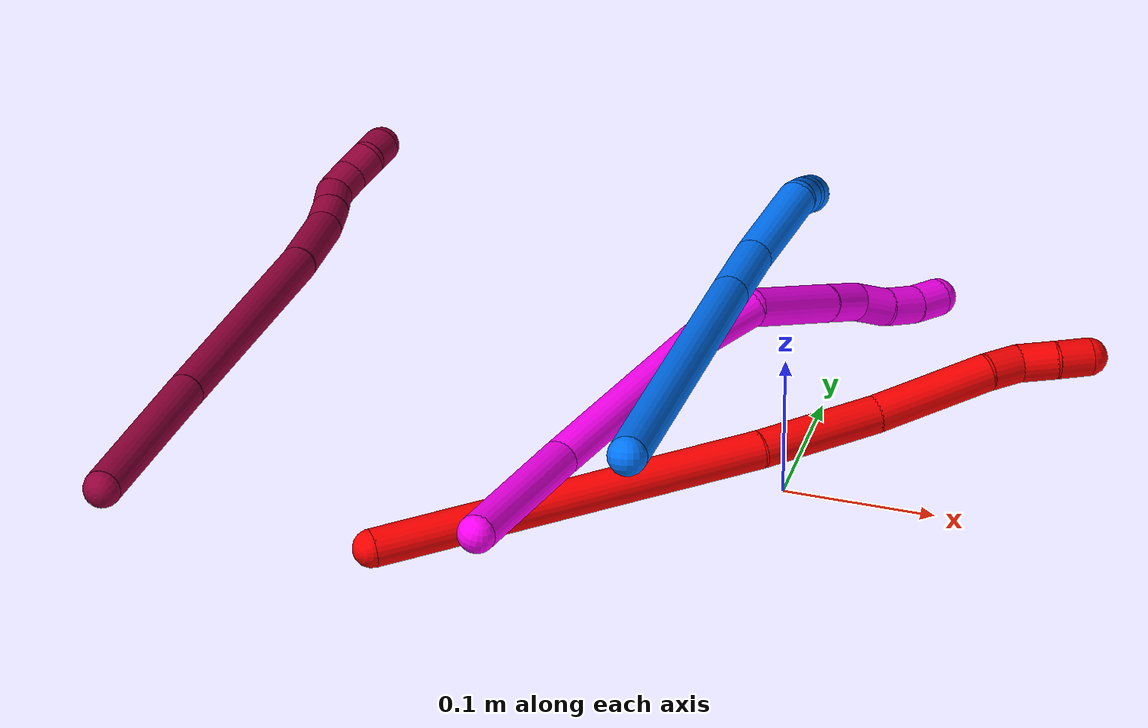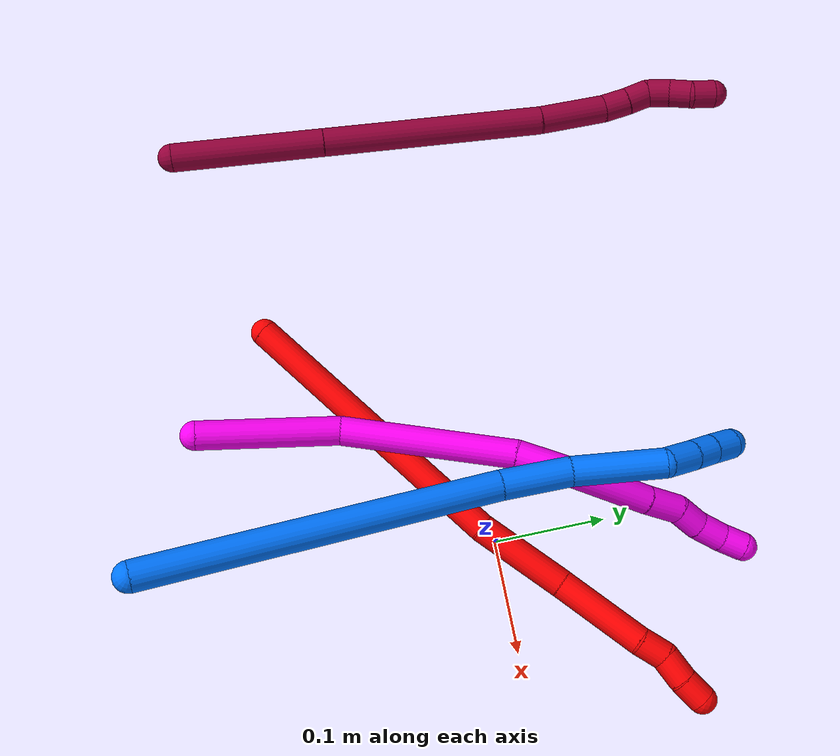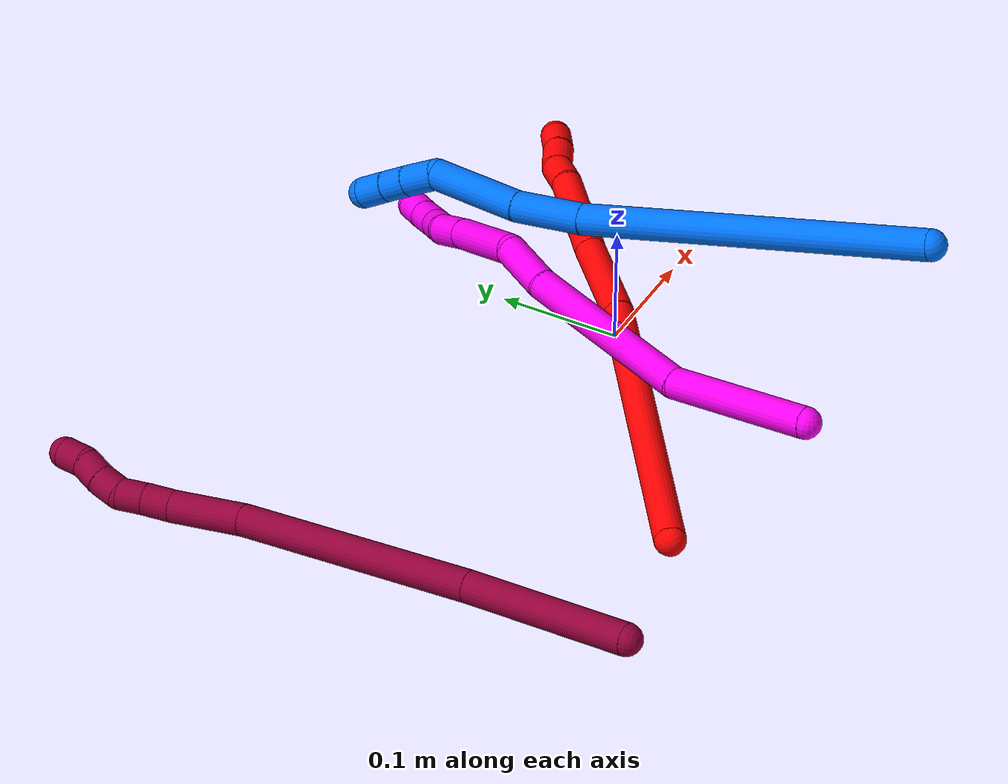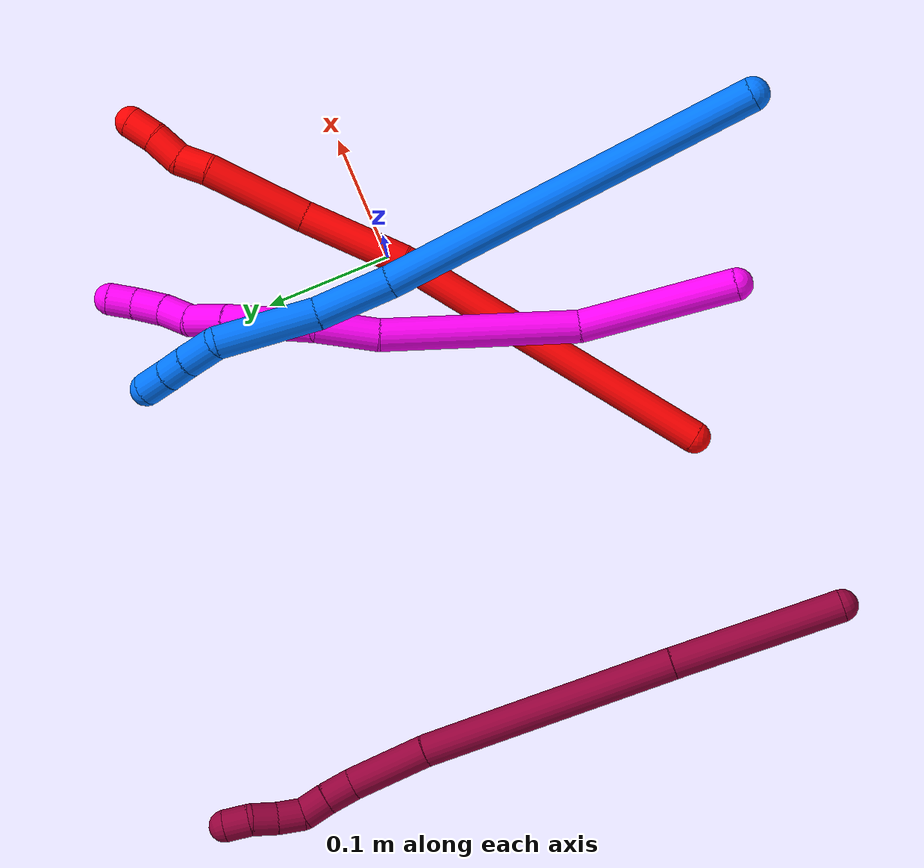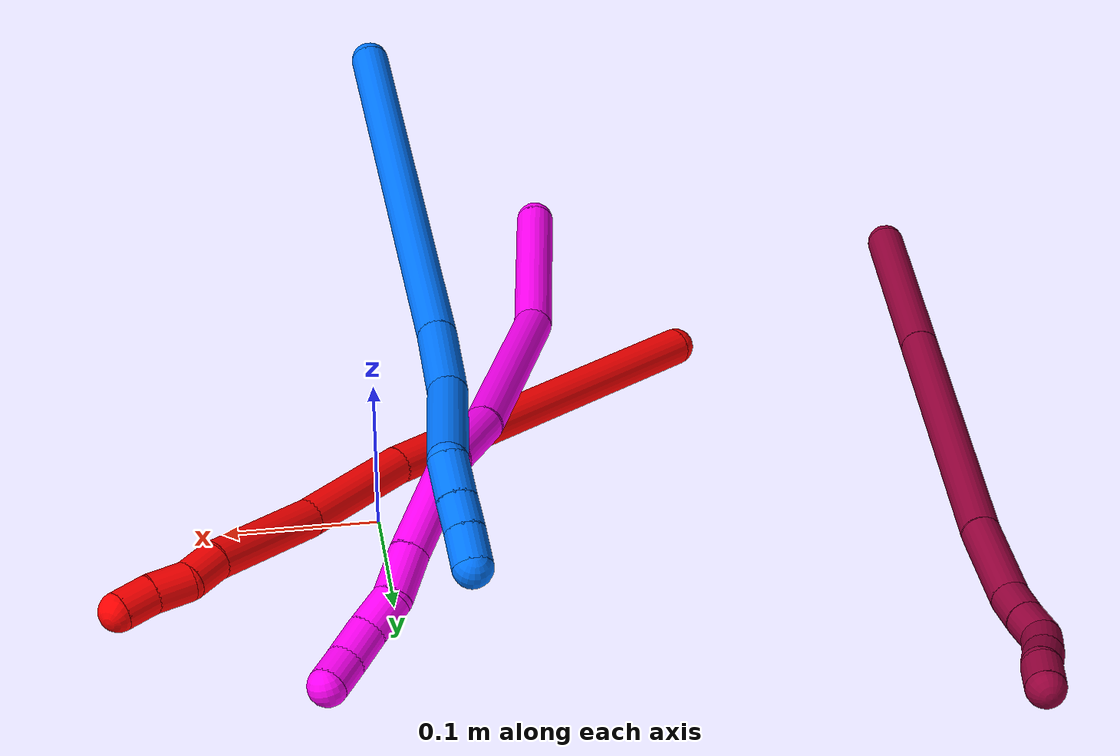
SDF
<sdf version="1.7">
 <world name="default">
  <model name="2">
   <static>0</static>
   <link name="2">
    <collision name="collision-cylinder-e_1_1_4">
     <pose>0.05207 0.022158 -0.118259 -2.95637 0.40844 -2.29847</pose>
     <geometry><cylinder><radius>0.0125</radius><length>0.262201</length></cylinder></geometry>
     <surface>
      <friction><ode><mu>1.16</mu><mu2>1.16</mu2><slip1>0</slip1><slip2>0</slip2></ode></friction>
      <contact><ode><kp>1e+06</kp><kd>1</kd><max_vel>0</max_vel><min_depth>0.001</min_depth></ode></contact>
     </surface>
    </collision>
    <visual name="visual-cylinder-e_1_1_4">
     <pose>0.05207 0.022158 -0.118259 -2.95637 0.40844 -2.29847</pose>
     <geometry><cylinder><radius>0.0125</radius><length>0.262201</length></cylinder></geometry>
     <material><ambient>1 0 0 1</ambient></material>
    </visual>
    <collision name="collision-cylinder-e_2_4_5">
     <pose>0.115905 0.050262 -0.276185 -2.99281 0.285304 -2.18427</pose>
     <geometry><cylinder><radius>0.0125</radius><length>0.083602</length></cylinder></geometry>
     <surface>
      <friction><ode><mu>1.16</mu><mu2>1.16</mu2><slip1>0</slip1><slip2>0</slip2></ode></friction>
      <contact><ode><kp>1e+06</kp><kd>1</kd><max_vel>0</max_vel><min_depth>0.001</min_depth></ode></contact>
     </surface>
    </collision>
    <visual name="visual-cylinder-e_2_4_5">
     <pose>0.115905 0.050262 -0.276185 -2.99281 0.285304 -2.18427</pose>
     <geometry><cylinder><radius>0.0125</radius><length>0.083602</length></cylinder></geometry>
     <material><ambient>1 0 0 1</ambient></material>
    </visual>
    <collision name="collision-cylinder-e_3_5_6">
     <pose>0.140155 0.065776 -0.35347 -2.89252 0.311186 -1.79448</pose>
     <geometry><cylinder><radius>0.0125</radius><length>0.081547</length></cylinder></geometry>
     <surface>
      <friction><ode><mu>1.16</mu><mu2>1.16</mu2><slip1>0</slip1><slip2>0</slip2></ode></friction>
      <contact><ode><kp>1e+06</kp><kd>1</kd><max_vel>0</max_vel><min_depth>0.001</min_depth></ode></contact>
     </surface>
    </collision>
    <visual name="visual-cylinder-e_3_5_6">
     <pose>0.140155 0.065776 -0.35347 -2.89252 0.311186 -1.79448</pose>
     <geometry><cylinder><radius>0.0125</radius><length>0.081547</length></cylinder></geometry>
     <material><ambient>1 0 0 1</ambient></material>
    </visual>
    <collision name="collision-cylinder-e_4_6_7">
     <pose>0.155216 0.076288 -0.403012 -3.06265 0.212187 -2.43138</pose>
     <geometry><cylinder><radius>0.0125</radius><length>0.024472</length></cylinder></geometry>
     <surface>
      <friction><ode><mu>1.16</mu><mu2>1.16</mu2><slip1>0</slip1><slip2>0</slip2></ode></friction>
      <contact><ode><kp>1e+06</kp><kd>1</kd><max_vel>0</max_vel><min_depth>0.001</min_depth></ode></contact>
     </surface>
    </collision>
    <visual name="visual-cylinder-e_4_6_7">
     <pose>0.155216 0.076288 -0.403012 -3.06265 0.212187 -2.43138</pose>
     <geometry><cylinder><radius>0.0125</radius><length>0.024472</length></cylinder></geometry>
     <material><ambient>1 0 0 1</ambient></material>
    </visual>
    <collision name="collision-cylinder-e_5_7_8">
     <pose>0.164825 0.078379 -0.425288 -3.03118 0.593919 -2.78424</pose>
     <geometry><cylinder><radius>0.0125</radius><length>0.025134</length></cylinder></geometry>
     <surface>
      <friction><ode><mu>1.16</mu><mu2>1.16</mu2><slip1>0</slip1><slip2>0</slip2></ode></friction>
      <contact><ode><kp>1e+06</kp><kd>1</kd><max_vel>0</max_vel><min_depth>0.001</min_depth></ode></contact>
     </surface>
    </collision>
    <visual name="visual-cylinder-e_5_7_8">
     <pose>0.164825 0.078379 -0.425288 -3.03118 0.593919 -2.78424</pose>
     <geometry><cylinder><radius>0.0125</radius><length>0.025134</length></cylinder></geometry>
     <material><ambient>1 0 0 1</ambient></material>
    </visual>
    <collision name="collision-cylinder-e_6_8_2">
     <pose>0.176821 0.079839 -0.446033 -3.11155 0.445329 -3.00908</pose>
     <geometry><cylinder><radius>0.0125</radius><length>0.023045</length></cylinder></geometry>
     <surface>
      <friction><ode><mu>1.16</mu><mu2>1.16</mu2><slip1>0</slip1><slip2>0</slip2></ode></friction>
      <contact><ode><kp>1e+06</kp><kd>1</kd><max_vel>0</max_vel><min_depth>0.001</min_depth></ode></contact>
     </surface>
    </collision>
    <visual name="visual-cylinder-e_6_8_2">
     <pose>0.176821 0.079839 -0.446033 -3.11155 0.445329 -3.00908</pose>
     <geometry><cylinder><radius>0.0125</radius><length>0.023045</length></cylinder></geometry>
     <material><ambient>1 0 0 1</ambient></material>
    </visual>
    <collision name="collision-sphere-2">
     <pose>0.181784 0.080151 -0.456427 0 -0 0</pose>
     <geometry><sphere><radius>0.0125</radius></sphere></geometry>
     <surface>
      <friction><ode><mu>1.16</mu><mu2>1.16</mu2><slip1>0</slip1><slip2>0</slip2></ode></friction>
      <contact><ode><kp>1e+06</kp><kd>1</kd><max_vel>0</max_vel><min_depth>0.001</min_depth></ode></contact>
     </surface>
    </collision>
    <visual name="visual-sphere-2">
     <pose>0.181784 0.080151 -0.456427 0 -0 0</pose>
     <geometry><sphere><radius>0.0125</radius></sphere></geometry>
     <material><ambient>1 0 0 1</ambient></material>
    </visual>
    <collision name="collision-sphere-4">
     <pose>0.104141 0.044316 -0.236517 0 -0 0</pose>
     <geometry><sphere><radius>0.0125</radius></sphere></geometry>
     <surface>
      <friction><ode><mu>1.16</mu><mu2>1.16</mu2><slip1>0</slip1><slip2>0</slip2></ode></friction>
      <contact><ode><kp>1e+06</kp><kd>1</kd><max_vel>0</max_vel><min_depth>0.001</min_depth></ode></contact>
     </surface>
    </collision>
    <visual name="visual-sphere-4">
     <pose>0.104141 0.044316 -0.236517 0 -0 0</pose>
     <geometry><sphere><radius>0.0125</radius></sphere></geometry>
     <material><ambient>1 0 0 1</ambient></material>
    </visual>
    <collision name="collision-sphere-1">
     <geometry><sphere><radius>0.0125</radius></sphere></geometry>
     <surface>
      <friction><ode><mu>1.16</mu><mu2>1.16</mu2><slip1>0</slip1><slip2>0</slip2></ode></friction>
      <contact><ode><kp>1e+06</kp><kd>1</kd><max_vel>0</max_vel><min_depth>0.001</min_depth></ode></contact>
     </surface>
    </collision>
    <visual name="visual-sphere-1">
     <geometry><sphere><radius>0.0125</radius></sphere></geometry>
     <material><ambient>1 0 0 1</ambient></material>
    </visual>
    <collision name="collision-sphere-8">
     <pose>0.171858 0.079526 -0.435639 0 -0 0</pose>
     <geometry><sphere><radius>0.0125</radius></sphere></geometry>
     <surface>
      <friction><ode><mu>1.16</mu><mu2>1.16</mu2><slip1>0</slip1><slip2>0</slip2></ode></friction>
      <contact><ode><kp>1e+06</kp><kd>1</kd><max_vel>0</max_vel><min_depth>0.001</min_depth></ode></contact>
     </surface>
    </collision>
    <visual name="visual-sphere-8">
     <pose>0.171858 0.079526 -0.435639 0 -0 0</pose>
     <geometry><sphere><radius>0.0125</radius></sphere></geometry>
     <material><ambient>1 0 0 1</ambient></material>
    </visual>
    <collision name="collision-sphere-5">
     <pose>0.12767 0.056208 -0.315853 0 -0 0</pose>
     <geometry><sphere><radius>0.0125</radius></sphere></geometry>
     <surface>
      <friction><ode><mu>1.16</mu><mu2>1.16</mu2><slip1>0</slip1><slip2>0</slip2></ode></friction>
      <contact><ode><kp>1e+06</kp><kd>1</kd><max_vel>0</max_vel><min_depth>0.001</min_depth></ode></contact>
     </surface>
    </collision>
    <visual name="visual-sphere-5">
     <pose>0.12767 0.056208 -0.315853 0 -0 0</pose>
     <geometry><sphere><radius>0.0125</radius></sphere></geometry>
     <material><ambient>1 0 0 1</ambient></material>
    </visual>
    <collision name="collision-sphere-6">
     <pose>0.152639 0.075344 -0.391087 0 -0 0</pose>
     <geometry><sphere><radius>0.0125</radius></sphere></geometry>
     <surface>
      <friction><ode><mu>1.16</mu><mu2>1.16</mu2><slip1>0</slip1><slip2>0</slip2></ode></friction>
      <contact><ode><kp>1e+06</kp><kd>1</kd><max_vel>0</max_vel><min_depth>0.001</min_depth></ode></contact>
     </surface>
    </collision>
    <visual name="visual-sphere-6">
     <pose>0.152639 0.075344 -0.391087 0 -0 0</pose>
     <geometry><sphere><radius>0.0125</radius></sphere></geometry>
     <material><ambient>1 0 0 1</ambient></material>
    </visual>
    <collision name="collision-sphere-7">
     <pose>0.157793 0.077231 -0.414936 0 -0 0</pose>
     <geometry><sphere><radius>0.0125</radius></sphere></geometry>
     <surface>
      <friction><ode><mu>1.16</mu><mu2>1.16</mu2><slip1>0</slip1><slip2>0</slip2></ode></friction>
      <contact><ode><kp>1e+06</kp><kd>1</kd><max_vel>0</max_vel><min_depth>0.001</min_depth></ode></contact>
     </surface>
    </collision>
    <visual name="visual-sphere-7">
     <pose>0.157793 0.077231 -0.414936 0 -0 0</pose>
     <geometry><sphere><radius>0.0125</radius></sphere></geometry>
     <material><ambient>1 0 0 1</ambient></material>
    </visual>
    <inertial>
     <pose>0.093576 0.042105 -0.227503 0 -0 0</pose>
     <mass>0.5</mass>
     <inertia>
      <ixx>-0.002077</ixx>
      <ixy>0</ixy>
      <ixz>0</ixz>
      <iyy>4e-06</iyy>
      <iyz>0</iyz>
      <izz>-0.000943</izz>
     </inertia>
    </inertial>
   </link>
   <pose>-0.22481 -0.16382 0.023287 1.41711 -0.050934 -0.53238</pose>
  </model>
  <model name="8">
   <static>0</static>
   <link name="8">
    <collision name="collision-cylinder-e_1_1_4">
     <pose>0.001609 0.007784 -0.066344 -3.0248 0.024082 -0.406238</pose>
     <geometry><cylinder><radius>0.0125</radius><length>0.133638</length></cylinder></geometry>
     <surface>
      <friction><ode><mu>1.16</mu><mu2>1.16</mu2><slip1>0</slip1><slip2>0</slip2></ode></friction>
      <contact><ode><kp>1e+06</kp><kd>1</kd><max_vel>0</max_vel><min_depth>0.001</min_depth></ode></contact>
     </surface>
    </collision>
    <visual name="visual-cylinder-e_1_1_4">
     <pose>0.001609 0.007784 -0.066344 -3.0248 0.024082 -0.406238</pose>
     <geometry><cylinder><radius>0.0125</radius><length>0.133638</length></cylinder></geometry>
     <material><ambient>0.584314 0 0.227451 1</ambient></material>
    </visual>
    <collision name="collision-cylinder-e_2_4_5">
     <pose>0.00877 0.028663 -0.231424 -3.00974 0.055685 -0.798379</pose>
     <geometry><cylinder><radius>0.0125</radius><length>0.199509</length></cylinder></geometry>
     <surface>
      <friction><ode><mu>1.16</mu><mu2>1.16</mu2><slip1>0</slip1><slip2>0</slip2></ode></friction>
      <contact><ode><kp>1e+06</kp><kd>1</kd><max_vel>0</max_vel><min_depth>0.001</min_depth></ode></contact>
     </surface>
    </collision>
    <visual name="visual-cylinder-e_2_4_5">
     <pose>0.00877 0.028663 -0.231424 -3.00974 0.055685 -0.798379</pose>
     <geometry><cylinder><radius>0.0125</radius><length>0.199509</length></cylinder></geometry>
     <material><ambient>0.584314 0 0.227451 1</ambient></material>
    </visual>
    <collision name="collision-cylinder-e_3_5_6">
     <pose>0.018689 0.044548 -0.360663 -3.05035 0.141613 -1.99776</pose>
     <geometry><cylinder><radius>0.0125</radius><length>0.061881</length></cylinder></geometry>
     <surface>
      <friction><ode><mu>1.16</mu><mu2>1.16</mu2><slip1>0</slip1><slip2>0</slip2></ode></friction>
      <contact><ode><kp>1e+06</kp><kd>1</kd><max_vel>0</max_vel><min_depth>0.001</min_depth></ode></contact>
     </surface>
    </collision>
    <visual name="visual-cylinder-e_3_5_6">
     <pose>0.018689 0.044548 -0.360663 -3.05035 0.141613 -1.99776</pose>
     <geometry><cylinder><radius>0.0125</radius><length>0.061881</length></cylinder></geometry>
     <material><ambient>0.584314 0 0.227451 1</ambient></material>
    </visual>
    <collision name="collision-cylinder-e_4_6_7">
     <pose>0.024136 0.04656 -0.402703 3.0742 0.093147 1.88921</pose>
     <geometry><cylinder><radius>0.0125</radius><length>0.023227</length></cylinder></geometry>
     <surface>
      <friction><ode><mu>1.16</mu><mu2>1.16</mu2><slip1>0</slip1><slip2>0</slip2></ode></friction>
      <contact><ode><kp>1e+06</kp><kd>1</kd><max_vel>0</max_vel><min_depth>0.001</min_depth></ode></contact>
     </surface>
    </collision>
    <visual name="visual-cylinder-e_4_6_7">
     <pose>0.024136 0.04656 -0.402703 3.0742 0.093147 1.88921</pose>
     <geometry><cylinder><radius>0.0125</radius><length>0.023227</length></cylinder></geometry>
     <material><ambient>0.584314 0 0.227451 1</ambient></material>
    </visual>
    <collision name="collision-cylinder-e_5_7_8">
     <pose>0.02672 0.044532 -0.424545 3.02091 0.143861 1.7461</pose>
     <geometry><cylinder><radius>0.0125</radius><length>0.020977</length></cylinder></geometry>
     <surface>
      <friction><ode><mu>1.16</mu><mu2>1.16</mu2><slip1>0</slip1><slip2>0</slip2></ode></friction>
      <contact><ode><kp>1e+06</kp><kd>1</kd><max_vel>0</max_vel><min_depth>0.001</min_depth></ode></contact>
     </surface>
    </collision>
    <visual name="visual-cylinder-e_5_7_8">
     <pose>0.02672 0.044532 -0.424545 3.02091 0.143861 1.7461</pose>
     <geometry><cylinder><radius>0.0125</radius><length>0.020977</length></cylinder></geometry>
     <material><ambient>0.584314 0 0.227451 1</ambient></material>
    </visual>
    <collision name="collision-cylinder-e_6_8_9">
     <pose>0.025651 0.044118 -0.444779 -3.05764 -0.252683 2.50288</pose>
     <geometry><cylinder><radius>0.0125</radius><length>0.020584</length></cylinder></geometry>
     <surface>
      <friction><ode><mu>1.16</mu><mu2>1.16</mu2><slip1>0</slip1><slip2>0</slip2></ode></friction>
      <contact><ode><kp>1e+06</kp><kd>1</kd><max_vel>0</max_vel><min_depth>0.001</min_depth></ode></contact>
     </surface>
    </collision>
    <visual name="visual-cylinder-e_6_8_9">
     <pose>0.025651 0.044118 -0.444779 -3.05764 -0.252683 2.50288</pose>
     <geometry><cylinder><radius>0.0125</radius><length>0.020584</length></cylinder></geometry>
     <material><ambient>0.584314 0 0.227451 1</ambient></material>
    </visual>
    <collision name="collision-cylinder-e_7_9_10">
     <pose>0.019064 0.045805 -0.463858 -3.04873 -0.41184 2.70381</pose>
     <geometry><cylinder><radius>0.0125</radius><length>0.020053</length></cylinder></geometry>
     <surface>
      <friction><ode><mu>1.16</mu><mu2>1.16</mu2><slip1>0</slip1><slip2>0</slip2></ode></friction>
      <contact><ode><kp>1e+06</kp><kd>1</kd><max_vel>0</max_vel><min_depth>0.001</min_depth></ode></contact>
     </surface>
    </collision>
    <visual name="visual-cylinder-e_7_9_10">
     <pose>0.019064 0.045805 -0.463858 -3.04873 -0.41184 2.70381</pose>
     <geometry><cylinder><radius>0.0125</radius><length>0.020053</length></cylinder></geometry>
     <material><ambient>0.584314 0 0.227451 1</ambient></material>
    </visual>
    <collision name="collision-cylinder-e_8_10_2">
     <pose>0.014323 0.048223 -0.482923 -2.98503 -0.072278 0.863795</pose>
     <geometry><cylinder><radius>0.0125</radius><length>0.020131</length></cylinder></geometry>
     <surface>
      <friction><ode><mu>1.16</mu><mu2>1.16</mu2><slip1>0</slip1><slip2>0</slip2></ode></friction>
      <contact><ode><kp>1e+06</kp><kd>1</kd><max_vel>0</max_vel><min_depth>0.001</min_depth></ode></contact>
     </surface>
    </collision>
    <visual name="visual-cylinder-e_8_10_2">
     <pose>0.014323 0.048223 -0.482923 -2.98503 -0.072278 0.863795</pose>
     <geometry><cylinder><radius>0.0125</radius><length>0.020131</length></cylinder></geometry>
     <material><ambient>0.584314 0 0.227451 1</ambient></material>
    </visual>
    <collision name="collision-sphere-2">
     <pose>0.013597 0.049788 -0.49284 0 -0 0</pose>
     <geometry><sphere><radius>0.0125</radius></sphere></geometry>
     <surface>
      <friction><ode><mu>1.16</mu><mu2>1.16</mu2><slip1>0</slip1><slip2>0</slip2></ode></friction>
      <contact><ode><kp>1e+06</kp><kd>1</kd><max_vel>0</max_vel><min_depth>0.001</min_depth></ode></contact>
     </surface>
    </collision>
    <visual name="visual-sphere-2">
     <pose>0.013597 0.049788 -0.49284 0 -0 0</pose>
     <geometry><sphere><radius>0.0125</radius></sphere></geometry>
     <material><ambient>0.584314 0 0.227451 1</ambient></material>
    </visual>
    <collision name="collision-sphere-10">
     <pose>0.01505 0.046657 -0.473007 0 -0 0</pose>
     <geometry><sphere><radius>0.0125</radius></sphere></geometry>
     <surface>
      <friction><ode><mu>1.16</mu><mu2>1.16</mu2><slip1>0</slip1><slip2>0</slip2></ode></friction>
      <contact><ode><kp>1e+06</kp><kd>1</kd><max_vel>0</max_vel><min_depth>0.001</min_depth></ode></contact>
     </surface>
    </collision>
    <visual name="visual-sphere-10">
     <pose>0.01505 0.046657 -0.473007 0 -0 0</pose>
     <geometry><sphere><radius>0.0125</radius></sphere></geometry>
     <material><ambient>0.584314 0 0.227451 1</ambient></material>
    </visual>
    <collision name="collision-sphere-9">
     <pose>0.023078 0.044953 -0.454709 0 -0 0</pose>
     <geometry><sphere><radius>0.0125</radius></sphere></geometry>
     <surface>
      <friction><ode><mu>1.16</mu><mu2>1.16</mu2><slip1>0</slip1><slip2>0</slip2></ode></friction>
      <contact><ode><kp>1e+06</kp><kd>1</kd><max_vel>0</max_vel><min_depth>0.001</min_depth></ode></contact>
     </surface>
    </collision>
    <visual name="visual-sphere-9">
     <pose>0.023078 0.044953 -0.454709 0 -0 0</pose>
     <geometry><sphere><radius>0.0125</radius></sphere></geometry>
     <material><ambient>0.584314 0 0.227451 1</ambient></material>
    </visual>
    <collision name="collision-sphere-4">
     <pose>0.003218 0.015569 -0.132689 0 -0 0</pose>
     <geometry><sphere><radius>0.0125</radius></sphere></geometry>
     <surface>
      <friction><ode><mu>1.16</mu><mu2>1.16</mu2><slip1>0</slip1><slip2>0</slip2></ode></friction>
      <contact><ode><kp>1e+06</kp><kd>1</kd><max_vel>0</max_vel><min_depth>0.001</min_depth></ode></contact>
     </surface>
    </collision>
    <visual name="visual-sphere-4">
     <pose>0.003218 0.015569 -0.132689 0 -0 0</pose>
     <geometry><sphere><radius>0.0125</radius></sphere></geometry>
     <material><ambient>0.584314 0 0.227451 1</ambient></material>
    </visual>
    <collision name="collision-sphere-1">
     <geometry><sphere><radius>0.0125</radius></sphere></geometry>
     <surface>
      <friction><ode><mu>1.16</mu><mu2>1.16</mu2><slip1>0</slip1><slip2>0</slip2></ode></friction>
      <contact><ode><kp>1e+06</kp><kd>1</kd><max_vel>0</max_vel><min_depth>0.001</min_depth></ode></contact>
     </surface>
    </collision>
    <visual name="visual-sphere-1">
     <geometry><sphere><radius>0.0125</radius></sphere></geometry>
     <material><ambient>0.584314 0 0.227451 1</ambient></material>
    </visual>
    <collision name="collision-sphere-8">
     <pose>0.028224 0.043282 -0.43485 0 -0 0</pose>
     <geometry><sphere><radius>0.0125</radius></sphere></geometry>
     <surface>
      <friction><ode><mu>1.16</mu><mu2>1.16</mu2><slip1>0</slip1><slip2>0</slip2></ode></friction>
      <contact><ode><kp>1e+06</kp><kd>1</kd><max_vel>0</max_vel><min_depth>0.001</min_depth></ode></contact>
     </surface>
    </collision>
    <visual name="visual-sphere-8">
     <pose>0.028224 0.043282 -0.43485 0 -0 0</pose>
     <geometry><sphere><radius>0.0125</radius></sphere></geometry>
     <material><ambient>0.584314 0 0.227451 1</ambient></material>
    </visual>
    <collision name="collision-sphere-5">
     <pose>0.014322 0.041757 -0.33016 0 -0 0</pose>
     <geometry><sphere><radius>0.0125</radius></sphere></geometry>
     <surface>
      <friction><ode><mu>1.16</mu><mu2>1.16</mu2><slip1>0</slip1><slip2>0</slip2></ode></friction>
      <contact><ode><kp>1e+06</kp><kd>1</kd><max_vel>0</max_vel><min_depth>0.001</min_depth></ode></contact>
     </surface>
    </collision>
    <visual name="visual-sphere-5">
     <pose>0.014322 0.041757 -0.33016 0 -0 0</pose>
     <geometry><sphere><radius>0.0125</radius></sphere></geometry>
     <material><ambient>0.584314 0 0.227451 1</ambient></material>
    </visual>
    <collision name="collision-sphere-6">
     <pose>0.023056 0.047339 -0.391166 0 -0 0</pose>
     <geometry><sphere><radius>0.0125</radius></sphere></geometry>
     <surface>
      <friction><ode><mu>1.16</mu><mu2>1.16</mu2><slip1>0</slip1><slip2>0</slip2></ode></friction>
      <contact><ode><kp>1e+06</kp><kd>1</kd><max_vel>0</max_vel><min_depth>0.001</min_depth></ode></contact>
     </surface>
    </collision>
    <visual name="visual-sphere-6">
     <pose>0.023056 0.047339 -0.391166 0 -0 0</pose>
     <geometry><sphere><radius>0.0125</radius></sphere></geometry>
     <material><ambient>0.584314 0 0.227451 1</ambient></material>
    </visual>
    <collision name="collision-sphere-7">
     <pose>0.025216 0.045781 -0.41424 0 -0 0</pose>
     <geometry><sphere><radius>0.0125</radius></sphere></geometry>
     <surface>
      <friction><ode><mu>1.16</mu><mu2>1.16</mu2><slip1>0</slip1><slip2>0</slip2></ode></friction>
      <contact><ode><kp>1e+06</kp><kd>1</kd><max_vel>0</max_vel><min_depth>0.001</min_depth></ode></contact>
     </surface>
    </collision>
    <visual name="visual-sphere-7">
     <pose>0.025216 0.045781 -0.41424 0 -0 0</pose>
     <geometry><sphere><radius>0.0125</radius></sphere></geometry>
     <material><ambient>0.584314 0 0.227451 1</ambient></material>
    </visual>
    <inertial>
     <pose>0.010882 0.028657 -0.247587 0 -0 0</pose>
     <mass>0.5</mass>
     <inertia>
      <ixx>7e-05</ixx>
      <ixy>0</ixy>
      <ixz>0</ixz>
      <iyy>-0.001203</iyy>
      <iyz>0</iyz>
      <izz>-0.000197</izz>
     </inertia>
    </inertial>
   </link>
   <pose>-0.385847 -0.210301 0.069515 -1.5784 0.775053 3.13515</pose>
  </model>
  <model name="10">
   <static>0</static>
   <link name="10">
    <collision name="collision-cylinder-e_1_1_4">
     <pose>0.028588 0.052034 0.012309 -1.3385 0.490987 -0.391313</pose>
     <geometry><cylinder><radius>0.0125</radius><length>0.121266</length></cylinder></geometry>
     <surface>
      <friction><ode><mu>1.16</mu><mu2>1.16</mu2><slip1>0</slip1><slip2>0</slip2></ode></friction>
      <contact><ode><kp>1e+06</kp><kd>1</kd><max_vel>0</max_vel><min_depth>0.001</min_depth></ode></contact>
     </surface>
    </collision>
    <visual name="visual-cylinder-e_1_1_4">
     <pose>0.028588 0.052034 0.012309 -1.3385 0.490987 -0.391313</pose>
     <geometry><cylinder><radius>0.0125</radius><length>0.121266</length></cylinder></geometry>
     <material><ambient>1 0 0.964706 1</ambient></material>
    </visual>
    <collision name="collision-cylinder-e_2_4_5">
     <pose>0.084109 0.174244 0.020451 -1.63011 0.365871 -0.387703</pose>
     <geometry><cylinder><radius>0.0125</radius><length>0.150565</length></cylinder></geometry>
     <surface>
      <friction><ode><mu>1.16</mu><mu2>1.16</mu2><slip1>0</slip1><slip2>0</slip2></ode></friction>
      <contact><ode><kp>1e+06</kp><kd>1</kd><max_vel>0</max_vel><min_depth>0.001</min_depth></ode></contact>
     </surface>
    </collision>
    <visual name="visual-cylinder-e_2_4_5">
     <pose>0.084109 0.174244 0.020451 -1.63011 0.365871 -0.387703</pose>
     <geometry><cylinder><radius>0.0125</radius><length>0.150565</length></cylinder></geometry>
     <material><ambient>1 0 0.964706 1</ambient></material>
    </visual>
    <collision name="collision-cylinder-e_3_5_6">
     <pose>0.115414 0.267782 0.013937 -1.67091 0.184075 -0.203363</pose>
     <geometry><cylinder><radius>0.0125</radius><length>0.047766</length></cylinder></geometry>
     <surface>
      <friction><ode><mu>1.16</mu><mu2>1.16</mu2><slip1>0</slip1><slip2>0</slip2></ode></friction>
      <contact><ode><kp>1e+06</kp><kd>1</kd><max_vel>0</max_vel><min_depth>0.001</min_depth></ode></contact>
     </surface>
    </collision>
    <visual name="visual-cylinder-e_3_5_6">
     <pose>0.115414 0.267782 0.013937 -1.67091 0.184075 -0.203363</pose>
     <geometry><cylinder><radius>0.0125</radius><length>0.047766</length></cylinder></geometry>
     <material><ambient>1 0 0.964706 1</ambient></material>
    </visual>
    <collision name="collision-cylinder-e_4_6_7">
     <pose>0.123125 0.32642 0.024231 -1.22672 0.088884 -0.062589</pose>
     <geometry><cylinder><radius>0.0125</radius><length>0.075244</length></cylinder></geometry>
     <surface>
      <friction><ode><mu>1.16</mu><mu2>1.16</mu2><slip1>0</slip1><slip2>0</slip2></ode></friction>
      <contact><ode><kp>1e+06</kp><kd>1</kd><max_vel>0</max_vel><min_depth>0.001</min_depth></ode></contact>
     </surface>
    </collision>
    <visual name="visual-cylinder-e_4_6_7">
     <pose>0.123125 0.32642 0.024231 -1.22672 0.088884 -0.062589</pose>
     <geometry><cylinder><radius>0.0125</radius><length>0.075244</length></cylinder></geometry>
     <material><ambient>1 0 0.964706 1</ambient></material>
    </visual>
    <collision name="collision-cylinder-e_5_7_8">
     <pose>0.12866 0.376721 0.043047 -1.18082 0.134331 -0.090097</pose>
     <geometry><cylinder><radius>0.0125</radius><length>0.032782</length></cylinder></geometry>
     <surface>
      <friction><ode><mu>1.16</mu><mu2>1.16</mu2><slip1>0</slip1><slip2>0</slip2></ode></friction>
      <contact><ode><kp>1e+06</kp><kd>1</kd><max_vel>0</max_vel><min_depth>0.001</min_depth></ode></contact>
     </surface>
    </collision>
    <visual name="visual-cylinder-e_5_7_8">
     <pose>0.12866 0.376721 0.043047 -1.18082 0.134331 -0.090097</pose>
     <geometry><cylinder><radius>0.0125</radius><length>0.032782</length></cylinder></geometry>
     <material><ambient>1 0 0.964706 1</ambient></material>
    </visual>
    <collision name="collision-cylinder-e_6_8_9">
     <pose>0.128334 0.403383 0.053289 -1.23462 -0.201687 0.14341</pose>
     <geometry><cylinder><radius>0.0125</radius><length>0.025167</length></cylinder></geometry>
     <surface>
      <friction><ode><mu>1.16</mu><mu2>1.16</mu2><slip1>0</slip1><slip2>0</slip2></ode></friction>
      <contact><ode><kp>1e+06</kp><kd>1</kd><max_vel>0</max_vel><min_depth>0.001</min_depth></ode></contact>
     </surface>
    </collision>
    <visual name="visual-cylinder-e_6_8_9">
     <pose>0.128334 0.403383 0.053289 -1.23462 -0.201687 0.14341</pose>
     <geometry><cylinder><radius>0.0125</radius><length>0.025167</length></cylinder></geometry>
     <material><ambient>1 0 0.964706 1</ambient></material>
    </visual>
    <collision name="collision-cylinder-e_7_9_10">
     <pose>0.125605 0.427448 0.060113 -1.3525 -0.016421 0.013178</pose>
     <geometry><cylinder><radius>0.0125</radius><length>0.025461</length></cylinder></geometry>
     <surface>
      <friction><ode><mu>1.16</mu><mu2>1.16</mu2><slip1>0</slip1><slip2>0</slip2></ode></friction>
      <contact><ode><kp>1e+06</kp><kd>1</kd><max_vel>0</max_vel><min_depth>0.001</min_depth></ode></contact>
     </surface>
    </collision>
    <visual name="visual-cylinder-e_7_9_10">
     <pose>0.125605 0.427448 0.060113 -1.3525 -0.016421 0.013178</pose>
     <geometry><cylinder><radius>0.0125</radius><length>0.025461</length></cylinder></geometry>
     <material><ambient>1 0 0.964706 1</ambient></material>
    </visual>
    <collision name="collision-cylinder-e_8_10_2">
     <pose>0.126275 0.450665 0.063898 -1.47575 0.080973 -0.073628</pose>
     <geometry><cylinder><radius>0.0125</radius><length>0.02175</length></cylinder></geometry>
     <surface>
      <friction><ode><mu>1.16</mu><mu2>1.16</mu2><slip1>0</slip1><slip2>0</slip2></ode></friction>
      <contact><ode><kp>1e+06</kp><kd>1</kd><max_vel>0</max_vel><min_depth>0.001</min_depth></ode></contact>
     </surface>
    </collision>
    <visual name="visual-cylinder-e_8_10_2">
     <pose>0.126275 0.450665 0.063898 -1.47575 0.080973 -0.073628</pose>
     <geometry><cylinder><radius>0.0125</radius><length>0.02175</length></cylinder></geometry>
     <material><ambient>1 0 0.964706 1</ambient></material>
    </visual>
    <collision name="collision-sphere-2">
     <pose>0.127155 0.461456 0.064927 0 -0 0</pose>
     <geometry><sphere><radius>0.0125</radius></sphere></geometry>
     <surface>
      <friction><ode><mu>1.16</mu><mu2>1.16</mu2><slip1>0</slip1><slip2>0</slip2></ode></friction>
      <contact><ode><kp>1e+06</kp><kd>1</kd><max_vel>0</max_vel><min_depth>0.001</min_depth></ode></contact>
     </surface>
    </collision>
    <visual name="visual-sphere-2">
     <pose>0.127155 0.461456 0.064927 0 -0 0</pose>
     <geometry><sphere><radius>0.0125</radius></sphere></geometry>
     <material><ambient>1 0 0.964706 1</ambient></material>
    </visual>
    <collision name="collision-sphere-10">
     <pose>0.125396 0.439875 0.062869 0 -0 0</pose>
     <geometry><sphere><radius>0.0125</radius></sphere></geometry>
     <surface>
      <friction><ode><mu>1.16</mu><mu2>1.16</mu2><slip1>0</slip1><slip2>0</slip2></ode></friction>
      <contact><ode><kp>1e+06</kp><kd>1</kd><max_vel>0</max_vel><min_depth>0.001</min_depth></ode></contact>
     </surface>
    </collision>
    <visual name="visual-sphere-10">
     <pose>0.125396 0.439875 0.062869 0 -0 0</pose>
     <geometry><sphere><radius>0.0125</radius></sphere></geometry>
     <material><ambient>1 0 0.964706 1</ambient></material>
    </visual>
    <collision name="collision-sphere-9">
     <pose>0.125814 0.415021 0.057356 0 -0 0</pose>
     <geometry><sphere><radius>0.0125</radius></sphere></geometry>
     <surface>
      <friction><ode><mu>1.16</mu><mu2>1.16</mu2><slip1>0</slip1><slip2>0</slip2></ode></friction>
      <contact><ode><kp>1e+06</kp><kd>1</kd><max_vel>0</max_vel><min_depth>0.001</min_depth></ode></contact>
     </surface>
    </collision>
    <visual name="visual-sphere-9">
     <pose>0.125814 0.415021 0.057356 0 -0 0</pose>
     <geometry><sphere><radius>0.0125</radius></sphere></geometry>
     <material><ambient>1 0 0.964706 1</ambient></material>
    </visual>
    <collision name="collision-sphere-4">
     <pose>0.057176 0.104068 0.024619 0 -0 0</pose>
     <geometry><sphere><radius>0.0125</radius></sphere></geometry>
     <surface>
      <friction><ode><mu>1.16</mu><mu2>1.16</mu2><slip1>0</slip1><slip2>0</slip2></ode></friction>
      <contact><ode><kp>1e+06</kp><kd>1</kd><max_vel>0</max_vel><min_depth>0.001</min_depth></ode></contact>
     </surface>
    </collision>
    <visual name="visual-sphere-4">
     <pose>0.057176 0.104068 0.024619 0 -0 0</pose>
     <geometry><sphere><radius>0.0125</radius></sphere></geometry>
     <material><ambient>1 0 0.964706 1</ambient></material>
    </visual>
    <collision name="collision-sphere-1">
     <geometry><sphere><radius>0.0125</radius></sphere></geometry>
     <surface>
      <friction><ode><mu>1.16</mu><mu2>1.16</mu2><slip1>0</slip1><slip2>0</slip2></ode></friction>
      <contact><ode><kp>1e+06</kp><kd>1</kd><max_vel>0</max_vel><min_depth>0.001</min_depth></ode></contact>
     </surface>
    </collision>
    <visual name="visual-sphere-1">
     <geometry><sphere><radius>0.0125</radius></sphere></geometry>
     <material><ambient>1 0 0.964706 1</ambient></material>
    </visual>
    <collision name="collision-sphere-8">
     <pose>0.130855 0.391745 0.049222 0 -0 0</pose>
     <geometry><sphere><radius>0.0125</radius></sphere></geometry>
     <surface>
      <friction><ode><mu>1.16</mu><mu2>1.16</mu2><slip1>0</slip1><slip2>0</slip2></ode></friction>
      <contact><ode><kp>1e+06</kp><kd>1</kd><max_vel>0</max_vel><min_depth>0.001</min_depth></ode></contact>
     </surface>
    </collision>
    <visual name="visual-sphere-8">
     <pose>0.130855 0.391745 0.049222 0 -0 0</pose>
     <geometry><sphere><radius>0.0125</radius></sphere></geometry>
     <material><ambient>1 0 0.964706 1</ambient></material>
    </visual>
    <collision name="collision-sphere-5">
     <pose>0.111043 0.24442 0.016283 0 -0 0</pose>
     <geometry><sphere><radius>0.0125</radius></sphere></geometry>
     <surface>
      <friction><ode><mu>1.16</mu><mu2>1.16</mu2><slip1>0</slip1><slip2>0</slip2></ode></friction>
      <contact><ode><kp>1e+06</kp><kd>1</kd><max_vel>0</max_vel><min_depth>0.001</min_depth></ode></contact>
     </surface>
    </collision>
    <visual name="visual-sphere-5">
     <pose>0.111043 0.24442 0.016283 0 -0 0</pose>
     <geometry><sphere><radius>0.0125</radius></sphere></geometry>
     <material><ambient>1 0 0.964706 1</ambient></material>
    </visual>
    <collision name="collision-sphere-6">
     <pose>0.119786 0.291144 0.01159 0 -0 0</pose>
     <geometry><sphere><radius>0.0125</radius></sphere></geometry>
     <surface>
      <friction><ode><mu>1.16</mu><mu2>1.16</mu2><slip1>0</slip1><slip2>0</slip2></ode></friction>
      <contact><ode><kp>1e+06</kp><kd>1</kd><max_vel>0</max_vel><min_depth>0.001</min_depth></ode></contact>
     </surface>
    </collision>
    <visual name="visual-sphere-6">
     <pose>0.119786 0.291144 0.01159 0 -0 0</pose>
     <geometry><sphere><radius>0.0125</radius></sphere></geometry>
     <material><ambient>1 0 0.964706 1</ambient></material>
    </visual>
    <collision name="collision-sphere-7">
     <pose>0.126465 0.361697 0.036872 0 -0 0</pose>
     <geometry><sphere><radius>0.0125</radius></sphere></geometry>
     <surface>
      <friction><ode><mu>1.16</mu><mu2>1.16</mu2><slip1>0</slip1><slip2>0</slip2></ode></friction>
      <contact><ode><kp>1e+06</kp><kd>1</kd><max_vel>0</max_vel><min_depth>0.001</min_depth></ode></contact>
     </surface>
    </collision>
    <visual name="visual-sphere-7">
     <pose>0.126465 0.361697 0.036872 0 -0 0</pose>
     <geometry><sphere><radius>0.0125</radius></sphere></geometry>
     <material><ambient>1 0 0.964706 1</ambient></material>
    </visual>
    <inertial>
     <pose>0.0886 0.226168 0.025467 0 -0 0</pose>
     <mass>0.5</mass>
     <inertia>
      <ixx>0.000286</ixx>
      <ixy>0</ixy>
      <ixz>0</ixz>
      <iyy>-2.4e-05</iyy>
      <iyz>0</iyz>
      <izz>-0.000636</izz>
     </inertia>
    </inertial>
   </link>
   <pose>-0.135113 -0.228729 0.097147 -3.05476 -0.2219 2.43267</pose>
  </model>
  <model name="14">
   <static>0</static>
   <link name="14">
    <collision name="collision-cylinder-e_1_1_4">
     <pose>-0.014067 0.143383 0.023182 -1.41051 -0.096548 0.08221</pose>
     <geometry><cylinder><radius>0.0125</radius><length>0.291849</length></cylinder></geometry>
     <surface>
      <friction><ode><mu>1.16</mu><mu2>1.16</mu2><slip1>0</slip1><slip2>0</slip2></ode></friction>
      <contact><ode><kp>1e+06</kp><kd>1</kd><max_vel>0</max_vel><min_depth>0.001</min_depth></ode></contact>
     </surface>
    </collision>
    <visual name="visual-cylinder-e_1_1_4">
     <pose>-0.014067 0.143383 0.023182 -1.41051 -0.096548 0.08221</pose>
     <geometry><cylinder><radius>0.0125</radius><length>0.291849</length></cylinder></geometry>
     <material><ambient>0 0.462745 1 1</ambient></material>
    </visual>
    <collision name="collision-cylinder-e_2_4_5">
     <pose>-0.029232 0.315119 0.05351 -1.3239 -0.03756 0.029269</pose>
     <geometry><cylinder><radius>0.0125</radius><length>0.058521</length></cylinder></geometry>
     <surface>
      <friction><ode><mu>1.16</mu><mu2>1.16</mu2><slip1>0</slip1><slip2>0</slip2></ode></friction>
      <contact><ode><kp>1e+06</kp><kd>1</kd><max_vel>0</max_vel><min_depth>0.001</min_depth></ode></contact>
     </surface>
    </collision>
    <visual name="visual-cylinder-e_2_4_5">
     <pose>-0.029232 0.315119 0.05351 -1.3239 -0.03756 0.029269</pose>
     <geometry><cylinder><radius>0.0125</radius><length>0.058521</length></cylinder></geometry>
     <material><ambient>0 0.462745 1 1</ambient></material>
    </visual>
    <collision name="collision-cylinder-e_3_5_6">
     <pose>-0.027075 0.37946 0.07421 -1.21058 0.084468 -0.058464</pose>
     <geometry><cylinder><radius>0.0125</radius><length>0.077186</length></cylinder></geometry>
     <surface>
      <friction><ode><mu>1.16</mu><mu2>1.16</mu2><slip1>0</slip1><slip2>0</slip2></ode></friction>
      <contact><ode><kp>1e+06</kp><kd>1</kd><max_vel>0</max_vel><min_depth>0.001</min_depth></ode></contact>
     </surface>
    </collision>
    <visual name="visual-cylinder-e_3_5_6">
     <pose>-0.027075 0.37946 0.07421 -1.21058 0.084468 -0.058464</pose>
     <geometry><cylinder><radius>0.0125</radius><length>0.077186</length></cylinder></geometry>
     <material><ambient>0 0.462745 1 1</ambient></material>
    </visual>
    <collision name="collision-cylinder-e_4_6_7">
     <pose>-0.025961 0.429244 0.086334 -1.6741 -0.153202 0.169829</pose>
     <geometry><cylinder><radius>0.0125</radius><length>0.028071</length></cylinder></geometry>
     <surface>
      <friction><ode><mu>1.16</mu><mu2>1.16</mu2><slip1>0</slip1><slip2>0</slip2></ode></friction>
      <contact><ode><kp>1e+06</kp><kd>1</kd><max_vel>0</max_vel><min_depth>0.001</min_depth></ode></contact>
     </surface>
    </collision>
    <visual name="visual-cylinder-e_4_6_7">
     <pose>-0.025961 0.429244 0.086334 -1.6741 -0.153202 0.169829</pose>
     <geometry><cylinder><radius>0.0125</radius><length>0.028071</length></cylinder></geometry>
     <material><ambient>0 0.462745 1 1</ambient></material>
    </visual>
    <collision name="collision-cylinder-e_5_7_8">
     <pose>-0.029976 0.453251 0.083675 -1.6906 -0.180197 0.203041</pose>
     <geometry><cylinder><radius>0.0125</radius><length>0.020904</length></cylinder></geometry>
     <surface>
      <friction><ode><mu>1.16</mu><mu2>1.16</mu2><slip1>0</slip1><slip2>0</slip2></ode></friction>
      <contact><ode><kp>1e+06</kp><kd>1</kd><max_vel>0</max_vel><min_depth>0.001</min_depth></ode></contact>
     </surface>
    </collision>
    <visual name="visual-cylinder-e_5_7_8">
     <pose>-0.029976 0.453251 0.083675 -1.6906 -0.180197 0.203041</pose>
     <geometry><cylinder><radius>0.0125</radius><length>0.020904</length></cylinder></geometry>
     <material><ambient>0 0.462745 1 1</ambient></material>
    </visual>
    <collision name="collision-cylinder-e_6_8_2">
     <pose>-0.033661 0.474942 0.080843 -1.70953 -0.155016 0.17805</pose>
     <geometry><cylinder><radius>0.0125</radius><length>0.023469</length></cylinder></geometry>
     <surface>
      <friction><ode><mu>1.16</mu><mu2>1.16</mu2><slip1>0</slip1><slip2>0</slip2></ode></friction>
      <contact><ode><kp>1e+06</kp><kd>1</kd><max_vel>0</max_vel><min_depth>0.001</min_depth></ode></contact>
     </surface>
    </collision>
    <visual name="visual-cylinder-e_6_8_2">
     <pose>-0.033661 0.474942 0.080843 -1.70953 -0.155016 0.17805</pose>
     <geometry><cylinder><radius>0.0125</radius><length>0.023469</length></cylinder></geometry>
     <material><ambient>0 0.462745 1 1</ambient></material>
    </visual>
    <collision name="collision-sphere-2">
     <pose>-0.035473 0.486425 0.079239 0 -0 0</pose>
     <geometry><sphere><radius>0.0125</radius></sphere></geometry>
     <surface>
      <friction><ode><mu>1.16</mu><mu2>1.16</mu2><slip1>0</slip1><slip2>0</slip2></ode></friction>
      <contact><ode><kp>1e+06</kp><kd>1</kd><max_vel>0</max_vel><min_depth>0.001</min_depth></ode></contact>
     </surface>
    </collision>
    <visual name="visual-sphere-2">
     <pose>-0.035473 0.486425 0.079239 0 -0 0</pose>
     <geometry><sphere><radius>0.0125</radius></sphere></geometry>
     <material><ambient>0 0.462745 1 1</ambient></material>
    </visual>
    <collision name="collision-sphere-4">
     <pose>-0.028134 0.286766 0.046364 0 -0 0</pose>
     <geometry><sphere><radius>0.0125</radius></sphere></geometry>
     <surface>
      <friction><ode><mu>1.16</mu><mu2>1.16</mu2><slip1>0</slip1><slip2>0</slip2></ode></friction>
      <contact><ode><kp>1e+06</kp><kd>1</kd><max_vel>0</max_vel><min_depth>0.001</min_depth></ode></contact>
     </surface>
    </collision>
    <visual name="visual-sphere-4">
     <pose>-0.028134 0.286766 0.046364 0 -0 0</pose>
     <geometry><sphere><radius>0.0125</radius></sphere></geometry>
     <material><ambient>0 0.462745 1 1</ambient></material>
    </visual>
    <collision name="collision-sphere-1">
     <geometry><sphere><radius>0.0125</radius></sphere></geometry>
     <surface>
      <friction><ode><mu>1.16</mu><mu2>1.16</mu2><slip1>0</slip1><slip2>0</slip2></ode></friction>
      <contact><ode><kp>1e+06</kp><kd>1</kd><max_vel>0</max_vel><min_depth>0.001</min_depth></ode></contact>
     </surface>
    </collision>
    <visual name="visual-sphere-1">
     <geometry><sphere><radius>0.0125</radius></sphere></geometry>
     <material><ambient>0 0.462745 1 1</ambient></material>
    </visual>
    <collision name="collision-sphere-8">
     <pose>-0.031849 0.46346 0.082446 0 -0 0</pose>
     <geometry><sphere><radius>0.0125</radius></sphere></geometry>
     <surface>
      <friction><ode><mu>1.16</mu><mu2>1.16</mu2><slip1>0</slip1><slip2>0</slip2></ode></friction>
      <contact><ode><kp>1e+06</kp><kd>1</kd><max_vel>0</max_vel><min_depth>0.001</min_depth></ode></contact>
     </surface>
    </collision>
    <visual name="visual-sphere-8">
     <pose>-0.031849 0.46346 0.082446 0 -0 0</pose>
     <geometry><sphere><radius>0.0125</radius></sphere></geometry>
     <material><ambient>0 0.462745 1 1</ambient></material>
    </visual>
    <collision name="collision-sphere-5">
     <pose>-0.030331 0.343473 0.060656 0 -0 0</pose>
     <geometry><sphere><radius>0.0125</radius></sphere></geometry>
     <surface>
      <friction><ode><mu>1.16</mu><mu2>1.16</mu2><slip1>0</slip1><slip2>0</slip2></ode></friction>
      <contact><ode><kp>1e+06</kp><kd>1</kd><max_vel>0</max_vel><min_depth>0.001</min_depth></ode></contact>
     </surface>
    </collision>
    <visual name="visual-sphere-5">
     <pose>-0.030331 0.343473 0.060656 0 -0 0</pose>
     <geometry><sphere><radius>0.0125</radius></sphere></geometry>
     <material><ambient>0 0.462745 1 1</ambient></material>
    </visual>
    <collision name="collision-sphere-6">
     <pose>-0.023819 0.415447 0.087765 0 -0 0</pose>
     <geometry><sphere><radius>0.0125</radius></sphere></geometry>
     <surface>
      <friction><ode><mu>1.16</mu><mu2>1.16</mu2><slip1>0</slip1><slip2>0</slip2></ode></friction>
      <contact><ode><kp>1e+06</kp><kd>1</kd><max_vel>0</max_vel><min_depth>0.001</min_depth></ode></contact>
     </surface>
    </collision>
    <visual name="visual-sphere-6">
     <pose>-0.023819 0.415447 0.087765 0 -0 0</pose>
     <geometry><sphere><radius>0.0125</radius></sphere></geometry>
     <material><ambient>0 0.462745 1 1</ambient></material>
    </visual>
    <collision name="collision-sphere-7">
     <pose>-0.028103 0.443042 0.084904 0 -0 0</pose>
     <geometry><sphere><radius>0.0125</radius></sphere></geometry>
     <surface>
      <friction><ode><mu>1.16</mu><mu2>1.16</mu2><slip1>0</slip1><slip2>0</slip2></ode></friction>
      <contact><ode><kp>1e+06</kp><kd>1</kd><max_vel>0</max_vel><min_depth>0.001</min_depth></ode></contact>
     </surface>
    </collision>
    <visual name="visual-sphere-7">
     <pose>-0.028103 0.443042 0.084904 0 -0 0</pose>
     <geometry><sphere><radius>0.0125</radius></sphere></geometry>
     <material><ambient>0 0.462745 1 1</ambient></material>
    </visual>
    <inertial>
     <pose>-0.020103 0.244494 0.04339 0 -0 0</pose>
     <mass>0.5</mass>
     <inertia>
      <ixx>0.002299</ixx>
      <ixy>0</ixy>
      <ixz>0</ixz>
      <iyy>0.000574</iyy>
      <iyz>0</iyz>
      <izz>-0.001905</izz>
     </inertia>
    </inertial>
   </link>
   <pose>-0.026437 -0.274156 0.207012 -0.389928 -0.096784 -0.027717</pose>
  </model>
 </world>
</sdf>
